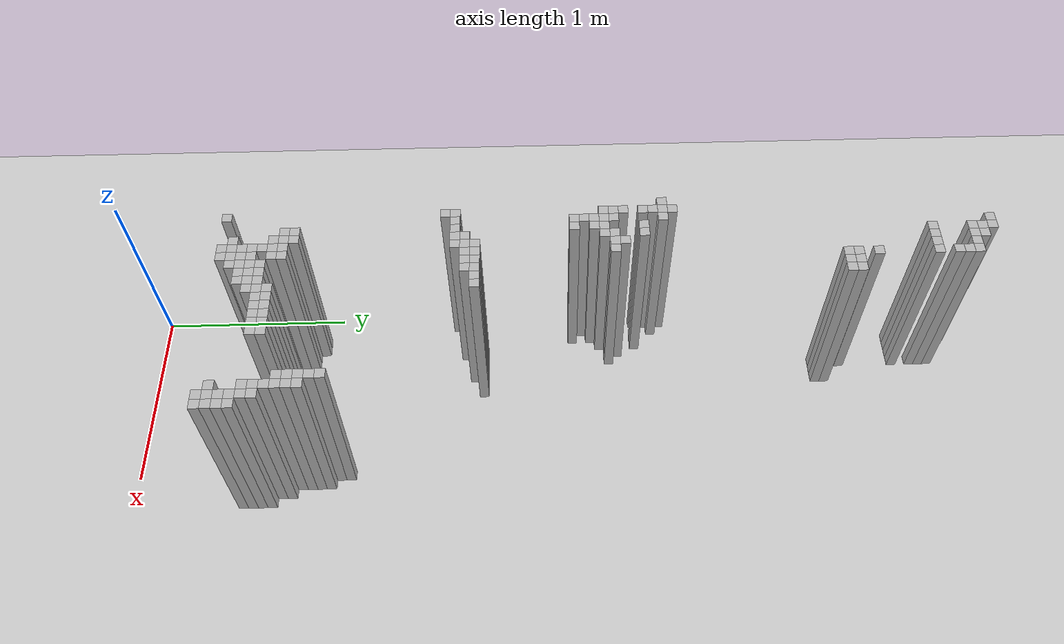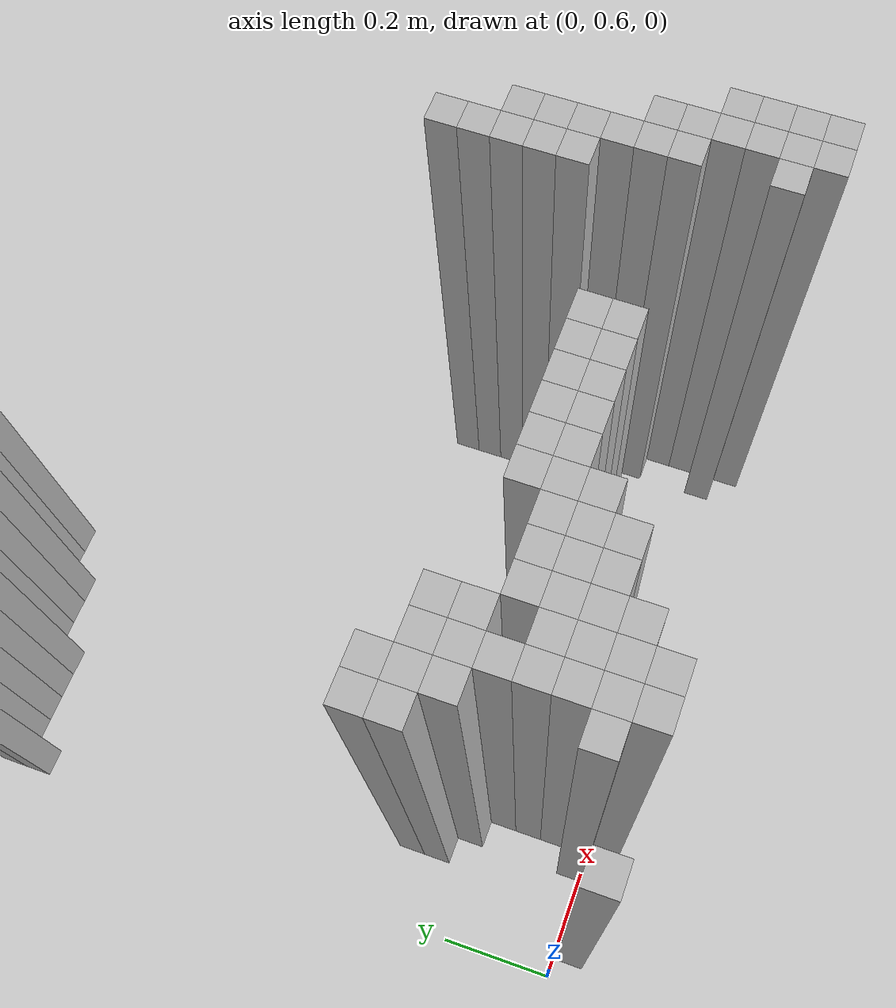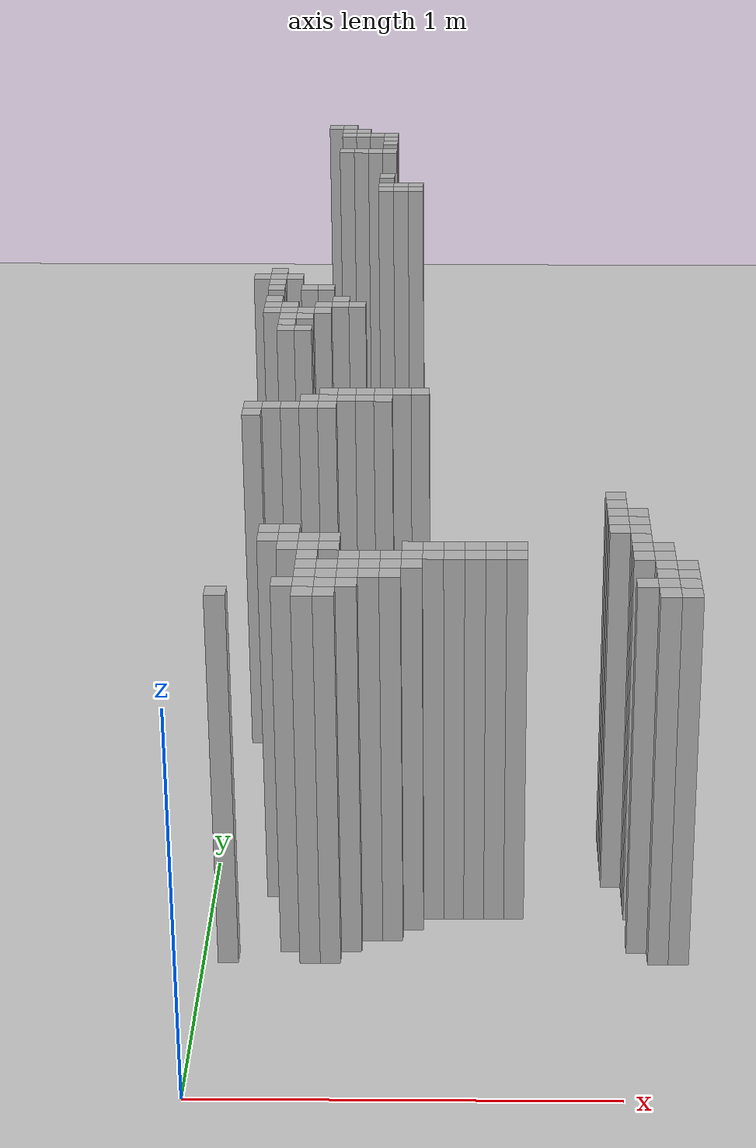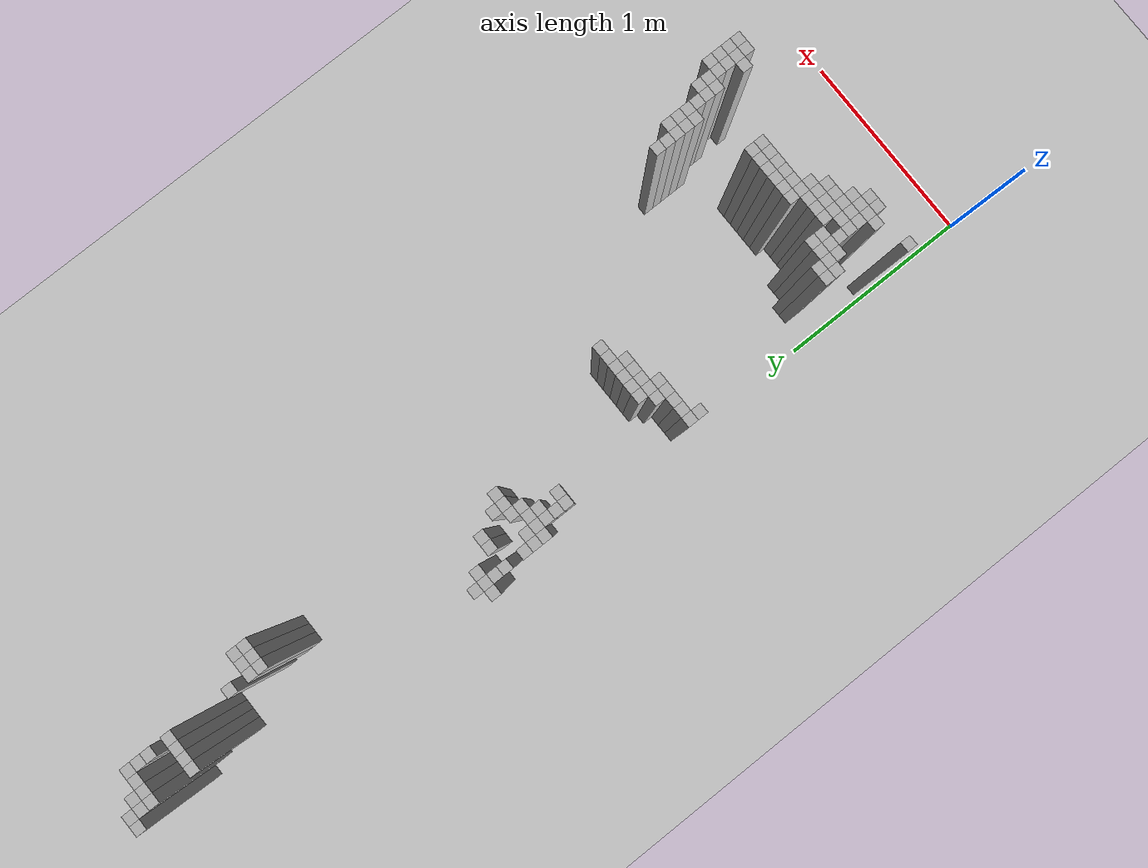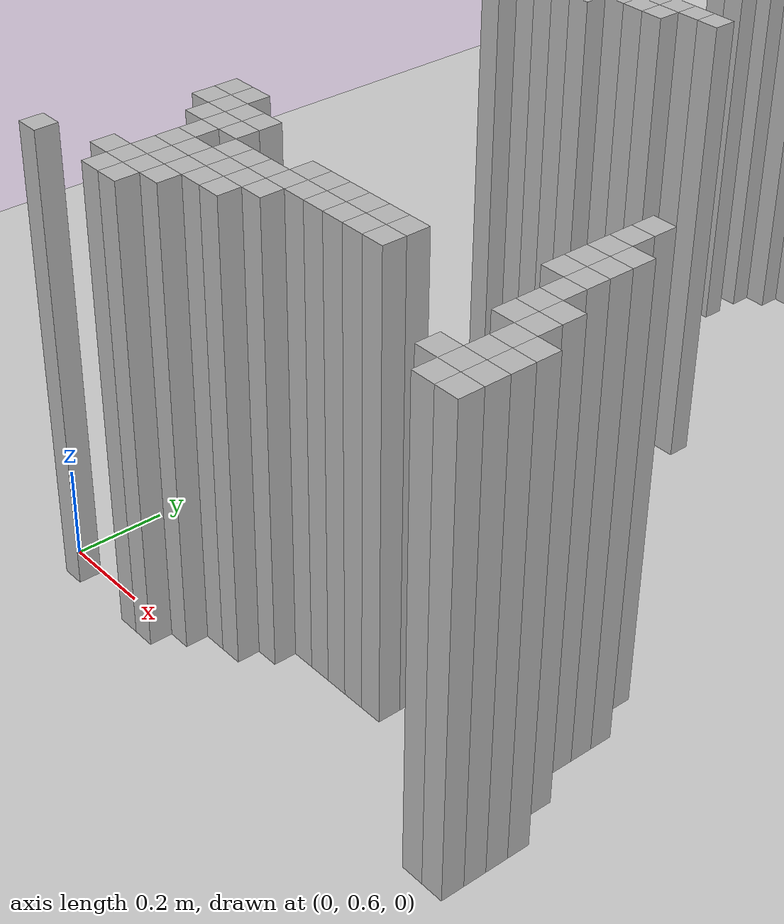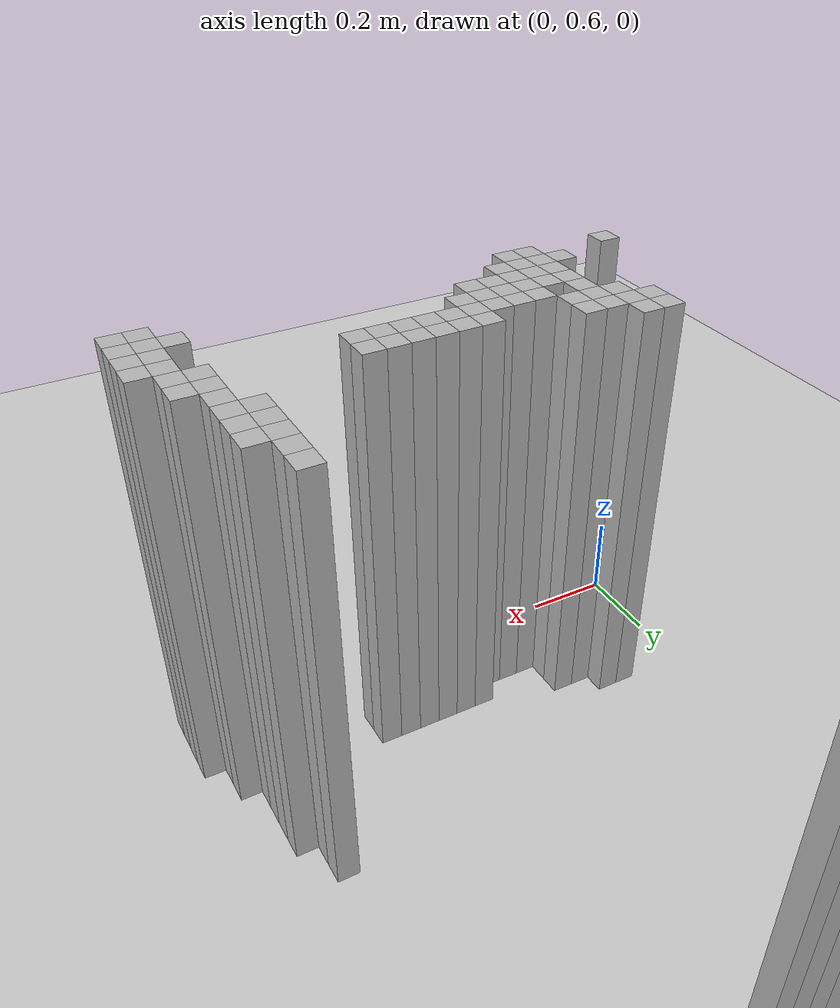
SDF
<sdf version="1.6">
 <world name="default">
  <include><uri>model://ground_plane</uri></include>
  <include><uri>model://sun</uri></include>
  <model name="wall_0">
   <static>true</static>
   <pose>0.16000000000000014 4.42 0.5 0 0 0</pose>
   <link name="link">
    <collision name="collision"><geometry><box><size>0.05 0.05 1</size></box></geometry></collision>
    <visual name="visual"><geometry><box><size>0.05 0.05 1</size></box></geometry></visual>
   </link>
  </model>
  <model name="wall_1">
   <static>true</static>
   <pose>0.2100000000000004 4.42 0.5 0 0 0</pose>
   <link name="link">
    <collision name="collision"><geometry><box><size>0.05 0.05 1</size></box></geometry></collision>
    <visual name="visual"><geometry><box><size>0.05 0.05 1</size></box></geometry></visual>
   </link>
  </model>
  <model name="wall_2">
   <static>true</static>
   <pose>0.2100000000000004 4.370000000000001 0.5 0 0 0</pose>
   <link name="link">
    <collision name="collision"><geometry><box><size>0.05 0.05 1</size></box></geometry></collision>
    <visual name="visual"><geometry><box><size>0.05 0.05 1</size></box></geometry></visual>
   </link>
  </model>
  <model name="wall_3">
   <static>true</static>
   <pose>0.26000000000000023 4.370000000000001 0.5 0 0 0</pose>
   <link name="link">
    <collision name="collision"><geometry><box><size>0.05 0.05 1</size></box></geometry></collision>
    <visual name="visual"><geometry><box><size>0.05 0.05 1</size></box></geometry></visual>
   </link>
  </model>
  <model name="wall_4">
   <static>true</static>
   <pose>0.2100000000000004 4.32 0.5 0 0 0</pose>
   <link name="link">
    <collision name="collision"><geometry><box><size>0.05 0.05 1</size></box></geometry></collision>
    <visual name="visual"><geometry><box><size>0.05 0.05 1</size></box></geometry></visual>
   </link>
  </model>
  <model name="wall_5">
   <static>true</static>
   <pose>0.26000000000000023 4.32 0.5 0 0 0</pose>
   <link name="link">
    <collision name="collision"><geometry><box><size>0.05 0.05 1</size></box></geometry></collision>
    <visual name="visual"><geometry><box><size>0.05 0.05 1</size></box></geometry></visual>
   </link>
  </model>
  <model name="wall_6">
   <static>true</static>
   <pose>0.3100000000000005 4.32 0.5 0 0 0</pose>
   <link name="link">
    <collision name="collision"><geometry><box><size>0.05 0.05 1</size></box></geometry></collision>
    <visual name="visual"><geometry><box><size>0.05 0.05 1</size></box></geometry></visual>
   </link>
  </model>
  <model name="wall_7">
   <static>true</static>
   <pose>0.3600000000000003 4.32 0.5 0 0 0</pose>
   <link name="link">
    <collision name="collision"><geometry><box><size>0.05 0.05 1</size></box></geometry></collision>
    <visual name="visual"><geometry><box><size>0.05 0.05 1</size></box></geometry></visual>
   </link>
  </model>
  <model name="wall_8">
   <static>true</static>
   <pose>0.3600000000000003 4.27 0.5 0 0 0</pose>
   <link name="link">
    <collision name="collision"><geometry><box><size>0.05 0.05 1</size></box></geometry></collision>
    <visual name="visual"><geometry><box><size>0.05 0.05 1</size></box></geometry></visual>
   </link>
  </model>
  <model name="wall_9">
   <static>true</static>
   <pose>0.3600000000000003 4.220000000000001 0.5 0 0 0</pose>
   <link name="link">
    <collision name="collision"><geometry><box><size>0.05 0.05 1</size></box></geometry></collision>
    <visual name="visual"><geometry><box><size>0.05 0.05 1</size></box></geometry></visual>
   </link>
  </model>
  <model name="wall_10">
   <static>true</static>
   <pose>0.2100000000000004 4.120000000000001 0.5 0 0 0</pose>
   <link name="link">
    <collision name="collision"><geometry><box><size>0.05 0.05 1</size></box></geometry></collision>
    <visual name="visual"><geometry><box><size>0.05 0.05 1</size></box></geometry></visual>
   </link>
  </model>
  <model name="wall_11">
   <static>true</static>
   <pose>0.26000000000000023 4.120000000000001 0.5 0 0 0</pose>
   <link name="link">
    <collision name="collision"><geometry><box><size>0.05 0.05 1</size></box></geometry></collision>
    <visual name="visual"><geometry><box><size>0.05 0.05 1</size></box></geometry></visual>
   </link>
  </model>
  <model name="wall_12">
   <static>true</static>
   <pose>0.3100000000000005 4.120000000000001 0.5 0 0 0</pose>
   <link name="link">
    <collision name="collision"><geometry><box><size>0.05 0.05 1</size></box></geometry></collision>
    <visual name="visual"><geometry><box><size>0.05 0.05 1</size></box></geometry></visual>
   </link>
  </model>
  <model name="wall_13">
   <static>true</static>
   <pose>0.3600000000000003 4.120000000000001 0.5 0 0 0</pose>
   <link name="link">
    <collision name="collision"><geometry><box><size>0.05 0.05 1</size></box></geometry></collision>
    <visual name="visual"><geometry><box><size>0.05 0.05 1</size></box></geometry></visual>
   </link>
  </model>
  <model name="wall_14">
   <static>true</static>
   <pose>0.3600000000000003 3.82 0.5 0 0 0</pose>
   <link name="link">
    <collision name="collision"><geometry><box><size>0.05 0.05 1</size></box></geometry></collision>
    <visual name="visual"><geometry><box><size>0.05 0.05 1</size></box></geometry></visual>
   </link>
  </model>
  <model name="wall_15">
   <static>true</static>
   <pose>0.3600000000000003 3.72 0.5 0 0 0</pose>
   <link name="link">
    <collision name="collision"><geometry><box><size>0.05 0.05 1</size></box></geometry></collision>
    <visual name="visual"><geometry><box><size>0.05 0.05 1</size></box></geometry></visual>
   </link>
  </model>
  <model name="wall_16">
   <static>true</static>
   <pose>0.41000000000000014 3.72 0.5 0 0 0</pose>
   <link name="link">
    <collision name="collision"><geometry><box><size>0.05 0.05 1</size></box></geometry></collision>
    <visual name="visual"><geometry><box><size>0.05 0.05 1</size></box></geometry></visual>
   </link>
  </model>
  <model name="wall_17">
   <static>true</static>
   <pose>0.4600000000000004 3.72 0.5 0 0 0</pose>
   <link name="link">
    <collision name="collision"><geometry><box><size>0.05 0.05 1</size></box></geometry></collision>
    <visual name="visual"><geometry><box><size>0.05 0.05 1</size></box></geometry></visual>
   </link>
  </model>
  <model name="wall_18">
   <static>true</static>
   <pose>0.3600000000000003 3.6700000000000004 0.5 0 0 0</pose>
   <link name="link">
    <collision name="collision"><geometry><box><size>0.05 0.05 1</size></box></geometry></collision>
    <visual name="visual"><geometry><box><size>0.05 0.05 1</size></box></geometry></visual>
   </link>
  </model>
  <model name="wall_19">
   <static>true</static>
   <pose>0.41000000000000014 3.6700000000000004 0.5 0 0 0</pose>
   <link name="link">
    <collision name="collision"><geometry><box><size>0.05 0.05 1</size></box></geometry></collision>
    <visual name="visual"><geometry><box><size>0.05 0.05 1</size></box></geometry></visual>
   </link>
  </model>
  <model name="wall_20">
   <static>true</static>
   <pose>0.4600000000000004 3.6700000000000004 0.5 0 0 0</pose>
   <link name="link">
    <collision name="collision"><geometry><box><size>0.05 0.05 1</size></box></geometry></collision>
    <visual name="visual"><geometry><box><size>0.05 0.05 1</size></box></geometry></visual>
   </link>
  </model>
  <model name="wall_23">
   <static>true</static>
   <pose>0.0600000000000005 2.82 0.5 0 0 0</pose>
   <link name="link">
    <collision name="collision"><geometry><box><size>0.05 0.05 1</size></box></geometry></collision>
    <visual name="visual"><geometry><box><size>0.05 0.05 1</size></box></geometry></visual>
   </link>
  </model>
  <model name="wall_27">
   <static>true</static>
   <pose>0.010000000000000231 2.77 0.5 0 0 0</pose>
   <link name="link">
    <collision name="collision"><geometry><box><size>0.05 0.05 1</size></box></geometry></collision>
    <visual name="visual"><geometry><box><size>0.05 0.05 1</size></box></geometry></visual>
   </link>
  </model>
  <model name="wall_28">
   <static>true</static>
   <pose>0.0600000000000005 2.77 0.5 0 0 0</pose>
   <link name="link">
    <collision name="collision"><geometry><box><size>0.05 0.05 1</size></box></geometry></collision>
    <visual name="visual"><geometry><box><size>0.05 0.05 1</size></box></geometry></visual>
   </link>
  </model>
  <model name="wall_29">
   <static>true</static>
   <pose>0.11000000000000032 2.77 0.5 0 0 0</pose>
   <link name="link">
    <collision name="collision"><geometry><box><size>0.05 0.05 1</size></box></geometry></collision>
    <visual name="visual"><geometry><box><size>0.05 0.05 1</size></box></geometry></visual>
   </link>
  </model>
  <model name="wall_33">
   <static>true</static>
   <pose>0.0600000000000005 2.72 0.5 0 0 0</pose>
   <link name="link">
    <collision name="collision"><geometry><box><size>0.05 0.05 1</size></box></geometry></collision>
    <visual name="visual"><geometry><box><size>0.05 0.05 1</size></box></geometry></visual>
   </link>
  </model>
  <model name="wall_36">
   <static>true</static>
   <pose>0.0600000000000005 2.6700000000000004 0.5 0 0 0</pose>
   <link name="link">
    <collision name="collision"><geometry><box><size>0.05 0.05 1</size></box></geometry></collision>
    <visual name="visual"><geometry><box><size>0.05 0.05 1</size></box></geometry></visual>
   </link>
  </model>
  <model name="wall_37">
   <static>true</static>
   <pose>0.16000000000000014 2.6700000000000004 0.5 0 0 0</pose>
   <link name="link">
    <collision name="collision"><geometry><box><size>0.05 0.05 1</size></box></geometry></collision>
    <visual name="visual"><geometry><box><size>0.05 0.05 1</size></box></geometry></visual>
   </link>
  </model>
  <model name="wall_38">
   <static>true</static>
   <pose>0.2100000000000004 2.6700000000000004 0.5 0 0 0</pose>
   <link name="link">
    <collision name="collision"><geometry><box><size>0.05 0.05 1</size></box></geometry></collision>
    <visual name="visual"><geometry><box><size>0.05 0.05 1</size></box></geometry></visual>
   </link>
  </model>
  <model name="wall_42">
   <static>true</static>
   <pose>0.0600000000000005 2.57 0.5 0 0 0</pose>
   <link name="link">
    <collision name="collision"><geometry><box><size>0.05 0.05 1</size></box></geometry></collision>
    <visual name="visual"><geometry><box><size>0.05 0.05 1</size></box></geometry></visual>
   </link>
  </model>
  <model name="wall_43">
   <static>true</static>
   <pose>0.26000000000000023 2.57 0.5 0 0 0</pose>
   <link name="link">
    <collision name="collision"><geometry><box><size>0.05 0.05 1</size></box></geometry></collision>
    <visual name="visual"><geometry><box><size>0.05 0.05 1</size></box></geometry></visual>
   </link>
  </model>
  <model name="wall_44">
   <static>true</static>
   <pose>0.0600000000000005 2.52 0.5 0 0 0</pose>
   <link name="link">
    <collision name="collision"><geometry><box><size>0.05 0.05 1</size></box></geometry></collision>
    <visual name="visual"><geometry><box><size>0.05 0.05 1</size></box></geometry></visual>
   </link>
  </model>
  <model name="wall_45">
   <static>true</static>
   <pose>0.11000000000000032 2.52 0.5 0 0 0</pose>
   <link name="link">
    <collision name="collision"><geometry><box><size>0.05 0.05 1</size></box></geometry></collision>
    <visual name="visual"><geometry><box><size>0.05 0.05 1</size></box></geometry></visual>
   </link>
  </model>
  <model name="wall_46">
   <static>true</static>
   <pose>0.2100000000000004 2.52 0.5 0 0 0</pose>
   <link name="link">
    <collision name="collision"><geometry><box><size>0.05 0.05 1</size></box></geometry></collision>
    <visual name="visual"><geometry><box><size>0.05 0.05 1</size></box></geometry></visual>
   </link>
  </model>
  <model name="wall_47">
   <static>true</static>
   <pose>0.26000000000000023 2.52 0.5 0 0 0</pose>
   <link name="link">
    <collision name="collision"><geometry><box><size>0.05 0.05 1</size></box></geometry></collision>
    <visual name="visual"><geometry><box><size>0.05 0.05 1</size></box></geometry></visual>
   </link>
  </model>
  <model name="wall_48">
   <static>true</static>
   <pose>0.3100000000000005 2.52 0.5 0 0 0</pose>
   <link name="link">
    <collision name="collision"><geometry><box><size>0.05 0.05 1</size></box></geometry></collision>
    <visual name="visual"><geometry><box><size>0.05 0.05 1</size></box></geometry></visual>
   </link>
  </model>
  <model name="wall_50">
   <static>true</static>
   <pose>0.0600000000000005 2.47 0.5 0 0 0</pose>
   <link name="link">
    <collision name="collision"><geometry><box><size>0.05 0.05 1</size></box></geometry></collision>
    <visual name="visual"><geometry><box><size>0.05 0.05 1</size></box></geometry></visual>
   </link>
  </model>
  <model name="wall_51">
   <static>true</static>
   <pose>0.11000000000000032 2.47 0.5 0 0 0</pose>
   <link name="link">
    <collision name="collision"><geometry><box><size>0.05 0.05 1</size></box></geometry></collision>
    <visual name="visual"><geometry><box><size>0.05 0.05 1</size></box></geometry></visual>
   </link>
  </model>
  <model name="wall_52">
   <static>true</static>
   <pose>0.16000000000000014 2.47 0.5 0 0 0</pose>
   <link name="link">
    <collision name="collision"><geometry><box><size>0.05 0.05 1</size></box></geometry></collision>
    <visual name="visual"><geometry><box><size>0.05 0.05 1</size></box></geometry></visual>
   </link>
  </model>
  <model name="wall_53">
   <static>true</static>
   <pose>0.2100000000000004 2.47 0.5 0 0 0</pose>
   <link name="link">
    <collision name="collision"><geometry><box><size>0.05 0.05 1</size></box></geometry></collision>
    <visual name="visual"><geometry><box><size>0.05 0.05 1</size></box></geometry></visual>
   </link>
  </model>
  <model name="wall_54">
   <static>true</static>
   <pose>0.11000000000000032 2.4200000000000004 0.5 0 0 0</pose>
   <link name="link">
    <collision name="collision"><geometry><box><size>0.05 0.05 1</size></box></geometry></collision>
    <visual name="visual"><geometry><box><size>0.05 0.05 1</size></box></geometry></visual>
   </link>
  </model>
  <model name="wall_55">
   <static>true</static>
   <pose>0.16000000000000014 2.4200000000000004 0.5 0 0 0</pose>
   <link name="link">
    <collision name="collision"><geometry><box><size>0.05 0.05 1</size></box></geometry></collision>
    <visual name="visual"><geometry><box><size>0.05 0.05 1</size></box></geometry></visual>
   </link>
  </model>
  <model name="wall_56">
   <static>true</static>
   <pose>0.11000000000000032 2.3699999999999997 0.5 0 0 0</pose>
   <link name="link">
    <collision name="collision"><geometry><box><size>0.05 0.05 1</size></box></geometry></collision>
    <visual name="visual"><geometry><box><size>0.05 0.05 1</size></box></geometry></visual>
   </link>
  </model>
  <model name="wall_57">
   <static>true</static>
   <pose>0.11000000000000032 2.32 0.5 0 0 0</pose>
   <link name="link">
    <collision name="collision"><geometry><box><size>0.05 0.05 1</size></box></geometry></collision>
    <visual name="visual"><geometry><box><size>0.05 0.05 1</size></box></geometry></visual>
   </link>
  </model>
  <model name="wall_58">
   <static>true</static>
   <pose>0.16000000000000014 2.32 0.5 0 0 0</pose>
   <link name="link">
    <collision name="collision"><geometry><box><size>0.05 0.05 1</size></box></geometry></collision>
    <visual name="visual"><geometry><box><size>0.05 0.05 1</size></box></geometry></visual>
   </link>
  </model>
  <model name="wall_65">
   <static>true</static>
   <pose>0.26000000000000023 1.8199999999999998 0.5 0 0 0</pose>
   <link name="link">
    <collision name="collision"><geometry><box><size>0.05 0.05 1</size></box></geometry></collision>
    <visual name="visual"><geometry><box><size>0.05 0.05 1</size></box></geometry></visual>
   </link>
  </model>
  <model name="wall_66">
   <static>true</static>
   <pose>0.3100000000000005 1.8199999999999998 0.5 0 0 0</pose>
   <link name="link">
    <collision name="collision"><geometry><box><size>0.05 0.05 1</size></box></geometry></collision>
    <visual name="visual"><geometry><box><size>0.05 0.05 1</size></box></geometry></visual>
   </link>
  </model>
  <model name="wall_67">
   <static>true</static>
   <pose>0.3600000000000003 1.8199999999999998 0.5 0 0 0</pose>
   <link name="link">
    <collision name="collision"><geometry><box><size>0.05 0.05 1</size></box></geometry></collision>
    <visual name="visual"><geometry><box><size>0.05 0.05 1</size></box></geometry></visual>
   </link>
  </model>
  <model name="wall_68">
   <static>true</static>
   <pose>0.41000000000000014 1.8199999999999998 0.5 0 0 0</pose>
   <link name="link">
    <collision name="collision"><geometry><box><size>0.05 0.05 1</size></box></geometry></collision>
    <visual name="visual"><geometry><box><size>0.05 0.05 1</size></box></geometry></visual>
   </link>
  </model>
  <model name="wall_69">
   <static>true</static>
   <pose>0.4600000000000004 1.8199999999999998 0.5 0 0 0</pose>
   <link name="link">
    <collision name="collision"><geometry><box><size>0.05 0.05 1</size></box></geometry></collision>
    <visual name="visual"><geometry><box><size>0.05 0.05 1</size></box></geometry></visual>
   </link>
  </model>
  <model name="wall_70">
   <static>true</static>
   <pose>0.5100000000000002 1.8199999999999998 0.5 0 0 0</pose>
   <link name="link">
    <collision name="collision"><geometry><box><size>0.05 0.05 1</size></box></geometry></collision>
    <visual name="visual"><geometry><box><size>0.05 0.05 1</size></box></geometry></visual>
   </link>
  </model>
  <model name="wall_72">
   <static>true</static>
   <pose>0.2100000000000004 1.77 0.5 0 0 0</pose>
   <link name="link">
    <collision name="collision"><geometry><box><size>0.05 0.05 1</size></box></geometry></collision>
    <visual name="visual"><geometry><box><size>0.05 0.05 1</size></box></geometry></visual>
   </link>
  </model>
  <model name="wall_73">
   <static>true</static>
   <pose>0.26000000000000023 1.77 0.5 0 0 0</pose>
   <link name="link">
    <collision name="collision"><geometry><box><size>0.05 0.05 1</size></box></geometry></collision>
    <visual name="visual"><geometry><box><size>0.05 0.05 1</size></box></geometry></visual>
   </link>
  </model>
  <model name="wall_74">
   <static>true</static>
   <pose>0.3100000000000005 1.77 0.5 0 0 0</pose>
   <link name="link">
    <collision name="collision"><geometry><box><size>0.05 0.05 1</size></box></geometry></collision>
    <visual name="visual"><geometry><box><size>0.05 0.05 1</size></box></geometry></visual>
   </link>
  </model>
  <model name="wall_75">
   <static>true</static>
   <pose>0.3600000000000003 1.77 0.5 0 0 0</pose>
   <link name="link">
    <collision name="collision"><geometry><box><size>0.05 0.05 1</size></box></geometry></collision>
    <visual name="visual"><geometry><box><size>0.05 0.05 1</size></box></geometry></visual>
   </link>
  </model>
  <model name="wall_76">
   <static>true</static>
   <pose>0.41000000000000014 1.77 0.5 0 0 0</pose>
   <link name="link">
    <collision name="collision"><geometry><box><size>0.05 0.05 1</size></box></geometry></collision>
    <visual name="visual"><geometry><box><size>0.05 0.05 1</size></box></geometry></visual>
   </link>
  </model>
  <model name="wall_77">
   <static>true</static>
   <pose>0.0600000000000005 1.7200000000000002 0.5 0 0 0</pose>
   <link name="link">
    <collision name="collision"><geometry><box><size>0.05 0.05 1</size></box></geometry></collision>
    <visual name="visual"><geometry><box><size>0.05 0.05 1</size></box></geometry></visual>
   </link>
  </model>
  <model name="wall_78">
   <static>true</static>
   <pose>0.11000000000000032 1.7200000000000002 0.5 0 0 0</pose>
   <link name="link">
    <collision name="collision"><geometry><box><size>0.05 0.05 1</size></box></geometry></collision>
    <visual name="visual"><geometry><box><size>0.05 0.05 1</size></box></geometry></visual>
   </link>
  </model>
  <model name="wall_79">
   <static>true</static>
   <pose>0.16000000000000014 1.7200000000000002 0.5 0 0 0</pose>
   <link name="link">
    <collision name="collision"><geometry><box><size>0.05 0.05 1</size></box></geometry></collision>
    <visual name="visual"><geometry><box><size>0.05 0.05 1</size></box></geometry></visual>
   </link>
  </model>
  <model name="wall_80">
   <static>true</static>
   <pose>0.2100000000000004 1.7200000000000002 0.5 0 0 0</pose>
   <link name="link">
    <collision name="collision"><geometry><box><size>0.05 0.05 1</size></box></geometry></collision>
    <visual name="visual"><geometry><box><size>0.05 0.05 1</size></box></geometry></visual>
   </link>
  </model>
  <model name="wall_81">
   <static>true</static>
   <pose>0.26000000000000023 1.7200000000000002 0.5 0 0 0</pose>
   <link name="link">
    <collision name="collision"><geometry><box><size>0.05 0.05 1</size></box></geometry></collision>
    <visual name="visual"><geometry><box><size>0.05 0.05 1</size></box></geometry></visual>
   </link>
  </model>
  <model name="wall_88">
   <static>true</static>
   <pose>0.0600000000000005 1.67 0.5 0 0 0</pose>
   <link name="link">
    <collision name="collision"><geometry><box><size>0.05 0.05 1</size></box></geometry></collision>
    <visual name="visual"><geometry><box><size>0.05 0.05 1</size></box></geometry></visual>
   </link>
  </model>
  <model name="wall_145">
   <static>true</static>
   <pose>1.0100000000000002 1.12 0.5 0 0 0</pose>
   <link name="link">
    <collision name="collision"><geometry><box><size>0.05 0.05 1</size></box></geometry></collision>
    <visual name="visual"><geometry><box><size>0.05 0.05 1</size></box></geometry></visual>
   </link>
  </model>
  <model name="wall_151">
   <static>true</static>
   <pose>1.0100000000000002 1.0699999999999998 0.5 0 0 0</pose>
   <link name="link">
    <collision name="collision"><geometry><box><size>0.05 0.05 1</size></box></geometry></collision>
    <visual name="visual"><geometry><box><size>0.05 0.05 1</size></box></geometry></visual>
   </link>
  </model>
  <model name="wall_156">
   <static>true</static>
   <pose>1.0100000000000002 1.02 0.5 0 0 0</pose>
   <link name="link">
    <collision name="collision"><geometry><box><size>0.05 0.05 1</size></box></geometry></collision>
    <visual name="visual"><geometry><box><size>0.05 0.05 1</size></box></geometry></visual>
   </link>
  </model>
  <model name="wall_157">
   <static>true</static>
   <pose>1.0600000000000005 1.02 0.5 0 0 0</pose>
   <link name="link">
    <collision name="collision"><geometry><box><size>0.05 0.05 1</size></box></geometry></collision>
    <visual name="visual"><geometry><box><size>0.05 0.05 1</size></box></geometry></visual>
   </link>
  </model>
  <model name="wall_160">
   <static>true</static>
   <pose>1.0100000000000002 0.9700000000000002 0.5 0 0 0</pose>
   <link name="link">
    <collision name="collision"><geometry><box><size>0.05 0.05 1</size></box></geometry></collision>
    <visual name="visual"><geometry><box><size>0.05 0.05 1</size></box></geometry></visual>
   </link>
  </model>
  <model name="wall_161">
   <static>true</static>
   <pose>1.0600000000000005 0.9700000000000002 0.5 0 0 0</pose>
   <link name="link">
    <collision name="collision"><geometry><box><size>0.05 0.05 1</size></box></geometry></collision>
    <visual name="visual"><geometry><box><size>0.05 0.05 1</size></box></geometry></visual>
   </link>
  </model>
  <model name="wall_164">
   <static>true</static>
   <pose>0.16000000000000014 0.9199999999999999 0.5 0 0 0</pose>
   <link name="link">
    <collision name="collision"><geometry><box><size>0.05 0.05 1</size></box></geometry></collision>
    <visual name="visual"><geometry><box><size>0.05 0.05 1</size></box></geometry></visual>
   </link>
  </model>
  <model name="wall_165">
   <static>true</static>
   <pose>0.2100000000000004 0.9199999999999999 0.5 0 0 0</pose>
   <link name="link">
    <collision name="collision"><geometry><box><size>0.05 0.05 1</size></box></geometry></collision>
    <visual name="visual"><geometry><box><size>0.05 0.05 1</size></box></geometry></visual>
   </link>
  </model>
  <model name="wall_166">
   <static>true</static>
   <pose>1.0100000000000002 0.9199999999999999 0.5 0 0 0</pose>
   <link name="link">
    <collision name="collision"><geometry><box><size>0.05 0.05 1</size></box></geometry></collision>
    <visual name="visual"><geometry><box><size>0.05 0.05 1</size></box></geometry></visual>
   </link>
  </model>
  <model name="wall_167">
   <static>true</static>
   <pose>1.0600000000000005 0.9199999999999999 0.5 0 0 0</pose>
   <link name="link">
    <collision name="collision"><geometry><box><size>0.05 0.05 1</size></box></geometry></collision>
    <visual name="visual"><geometry><box><size>0.05 0.05 1</size></box></geometry></visual>
   </link>
  </model>
  <model name="wall_170">
   <static>true</static>
   <pose>0.16000000000000014 0.8700000000000001 0.5 0 0 0</pose>
   <link name="link">
    <collision name="collision"><geometry><box><size>0.05 0.05 1</size></box></geometry></collision>
    <visual name="visual"><geometry><box><size>0.05 0.05 1</size></box></geometry></visual>
   </link>
  </model>
  <model name="wall_171">
   <static>true</static>
   <pose>0.2100000000000004 0.8700000000000001 0.5 0 0 0</pose>
   <link name="link">
    <collision name="collision"><geometry><box><size>0.05 0.05 1</size></box></geometry></collision>
    <visual name="visual"><geometry><box><size>0.05 0.05 1</size></box></geometry></visual>
   </link>
  </model>
  <model name="wall_172">
   <static>true</static>
   <pose>0.26000000000000023 0.8700000000000001 0.5 0 0 0</pose>
   <link name="link">
    <collision name="collision"><geometry><box><size>0.05 0.05 1</size></box></geometry></collision>
    <visual name="visual"><geometry><box><size>0.05 0.05 1</size></box></geometry></visual>
   </link>
  </model>
  <model name="wall_173">
   <static>true</static>
   <pose>0.3100000000000005 0.8700000000000001 0.5 0 0 0</pose>
   <link name="link">
    <collision name="collision"><geometry><box><size>0.05 0.05 1</size></box></geometry></collision>
    <visual name="visual"><geometry><box><size>0.05 0.05 1</size></box></geometry></visual>
   </link>
  </model>
  <model name="wall_174">
   <static>true</static>
   <pose>1.0600000000000005 0.8700000000000001 0.5 0 0 0</pose>
   <link name="link">
    <collision name="collision"><geometry><box><size>0.05 0.05 1</size></box></geometry></collision>
    <visual name="visual"><geometry><box><size>0.05 0.05 1</size></box></geometry></visual>
   </link>
  </model>
  <model name="wall_178">
   <static>true</static>
   <pose>0.2100000000000004 0.8199999999999998 0.5 0 0 0</pose>
   <link name="link">
    <collision name="collision"><geometry><box><size>0.05 0.05 1</size></box></geometry></collision>
    <visual name="visual"><geometry><box><size>0.05 0.05 1</size></box></geometry></visual>
   </link>
  </model>
  <model name="wall_179">
   <static>true</static>
   <pose>0.26000000000000023 0.8199999999999998 0.5 0 0 0</pose>
   <link name="link">
    <collision name="collision"><geometry><box><size>0.05 0.05 1</size></box></geometry></collision>
    <visual name="visual"><geometry><box><size>0.05 0.05 1</size></box></geometry></visual>
   </link>
  </model>
  <model name="wall_180">
   <static>true</static>
   <pose>0.3100000000000005 0.8199999999999998 0.5 0 0 0</pose>
   <link name="link">
    <collision name="collision"><geometry><box><size>0.05 0.05 1</size></box></geometry></collision>
    <visual name="visual"><geometry><box><size>0.05 0.05 1</size></box></geometry></visual>
   </link>
  </model>
  <model name="wall_181">
   <static>true</static>
   <pose>0.5100000000000002 0.8199999999999998 0.5 0 0 0</pose>
   <link name="link">
    <collision name="collision"><geometry><box><size>0.05 0.05 1</size></box></geometry></collision>
    <visual name="visual"><geometry><box><size>0.05 0.05 1</size></box></geometry></visual>
   </link>
  </model>
  <model name="wall_182">
   <static>true</static>
   <pose>0.5600000000000005 0.8199999999999998 0.5 0 0 0</pose>
   <link name="link">
    <collision name="collision"><geometry><box><size>0.05 0.05 1</size></box></geometry></collision>
    <visual name="visual"><geometry><box><size>0.05 0.05 1</size></box></geometry></visual>
   </link>
  </model>
  <model name="wall_183">
   <static>true</static>
   <pose>0.6100000000000003 0.8199999999999998 0.5 0 0 0</pose>
   <link name="link">
    <collision name="collision"><geometry><box><size>0.05 0.05 1</size></box></geometry></collision>
    <visual name="visual"><geometry><box><size>0.05 0.05 1</size></box></geometry></visual>
   </link>
  </model>
  <model name="wall_184">
   <static>true</static>
   <pose>0.6600000000000001 0.8199999999999998 0.5 0 0 0</pose>
   <link name="link">
    <collision name="collision"><geometry><box><size>0.05 0.05 1</size></box></geometry></collision>
    <visual name="visual"><geometry><box><size>0.05 0.05 1</size></box></geometry></visual>
   </link>
  </model>
  <model name="wall_185">
   <static>true</static>
   <pose>0.7100000000000004 0.8199999999999998 0.5 0 0 0</pose>
   <link name="link">
    <collision name="collision"><geometry><box><size>0.05 0.05 1</size></box></geometry></collision>
    <visual name="visual"><geometry><box><size>0.05 0.05 1</size></box></geometry></visual>
   </link>
  </model>
  <model name="wall_186">
   <static>true</static>
   <pose>0.7600000000000002 0.8199999999999998 0.5 0 0 0</pose>
   <link name="link">
    <collision name="collision"><geometry><box><size>0.05 0.05 1</size></box></geometry></collision>
    <visual name="visual"><geometry><box><size>0.05 0.05 1</size></box></geometry></visual>
   </link>
  </model>
  <model name="wall_187">
   <static>true</static>
   <pose>1.0600000000000005 0.8199999999999998 0.5 0 0 0</pose>
   <link name="link">
    <collision name="collision"><geometry><box><size>0.05 0.05 1</size></box></geometry></collision>
    <visual name="visual"><geometry><box><size>0.05 0.05 1</size></box></geometry></visual>
   </link>
  </model>
  <model name="wall_188">
   <static>true</static>
   <pose>1.1100000000000003 0.8199999999999998 0.5 0 0 0</pose>
   <link name="link">
    <collision name="collision"><geometry><box><size>0.05 0.05 1</size></box></geometry></collision>
    <visual name="visual"><geometry><box><size>0.05 0.05 1</size></box></geometry></visual>
   </link>
  </model>
  <model name="wall_192">
   <static>true</static>
   <pose>0.26000000000000023 0.77 0.5 0 0 0</pose>
   <link name="link">
    <collision name="collision"><geometry><box><size>0.05 0.05 1</size></box></geometry></collision>
    <visual name="visual"><geometry><box><size>0.05 0.05 1</size></box></geometry></visual>
   </link>
  </model>
  <model name="wall_193">
   <static>true</static>
   <pose>0.3600000000000003 0.77 0.5 0 0 0</pose>
   <link name="link">
    <collision name="collision"><geometry><box><size>0.05 0.05 1</size></box></geometry></collision>
    <visual name="visual"><geometry><box><size>0.05 0.05 1</size></box></geometry></visual>
   </link>
  </model>
  <model name="wall_194">
   <static>true</static>
   <pose>0.41000000000000014 0.77 0.5 0 0 0</pose>
   <link name="link">
    <collision name="collision"><geometry><box><size>0.05 0.05 1</size></box></geometry></collision>
    <visual name="visual"><geometry><box><size>0.05 0.05 1</size></box></geometry></visual>
   </link>
  </model>
  <model name="wall_195">
   <static>true</static>
   <pose>0.4600000000000004 0.77 0.5 0 0 0</pose>
   <link name="link">
    <collision name="collision"><geometry><box><size>0.05 0.05 1</size></box></geometry></collision>
    <visual name="visual"><geometry><box><size>0.05 0.05 1</size></box></geometry></visual>
   </link>
  </model>
  <model name="wall_196">
   <static>true</static>
   <pose>0.5100000000000002 0.77 0.5 0 0 0</pose>
   <link name="link">
    <collision name="collision"><geometry><box><size>0.05 0.05 1</size></box></geometry></collision>
    <visual name="visual"><geometry><box><size>0.05 0.05 1</size></box></geometry></visual>
   </link>
  </model>
  <model name="wall_197">
   <static>true</static>
   <pose>0.5600000000000005 0.77 0.5 0 0 0</pose>
   <link name="link">
    <collision name="collision"><geometry><box><size>0.05 0.05 1</size></box></geometry></collision>
    <visual name="visual"><geometry><box><size>0.05 0.05 1</size></box></geometry></visual>
   </link>
  </model>
  <model name="wall_198">
   <static>true</static>
   <pose>0.6100000000000003 0.77 0.5 0 0 0</pose>
   <link name="link">
    <collision name="collision"><geometry><box><size>0.05 0.05 1</size></box></geometry></collision>
    <visual name="visual"><geometry><box><size>0.05 0.05 1</size></box></geometry></visual>
   </link>
  </model>
  <model name="wall_199">
   <static>true</static>
   <pose>0.6600000000000001 0.77 0.5 0 0 0</pose>
   <link name="link">
    <collision name="collision"><geometry><box><size>0.05 0.05 1</size></box></geometry></collision>
    <visual name="visual"><geometry><box><size>0.05 0.05 1</size></box></geometry></visual>
   </link>
  </model>
  <model name="wall_200">
   <static>true</static>
   <pose>0.7100000000000004 0.77 0.5 0 0 0</pose>
   <link name="link">
    <collision name="collision"><geometry><box><size>0.05 0.05 1</size></box></geometry></collision>
    <visual name="visual"><geometry><box><size>0.05 0.05 1</size></box></geometry></visual>
   </link>
  </model>
  <model name="wall_201">
   <static>true</static>
   <pose>0.7600000000000002 0.77 0.5 0 0 0</pose>
   <link name="link">
    <collision name="collision"><geometry><box><size>0.05 0.05 1</size></box></geometry></collision>
    <visual name="visual"><geometry><box><size>0.05 0.05 1</size></box></geometry></visual>
   </link>
  </model>
  <model name="wall_202">
   <static>true</static>
   <pose>1.0600000000000005 0.77 0.5 0 0 0</pose>
   <link name="link">
    <collision name="collision"><geometry><box><size>0.05 0.05 1</size></box></geometry></collision>
    <visual name="visual"><geometry><box><size>0.05 0.05 1</size></box></geometry></visual>
   </link>
  </model>
  <model name="wall_203">
   <static>true</static>
   <pose>1.1100000000000003 0.77 0.5 0 0 0</pose>
   <link name="link">
    <collision name="collision"><geometry><box><size>0.05 0.05 1</size></box></geometry></collision>
    <visual name="visual"><geometry><box><size>0.05 0.05 1</size></box></geometry></visual>
   </link>
  </model>
  <model name="wall_207">
   <static>true</static>
   <pose>0.26000000000000023 0.7200000000000002 0.5 0 0 0</pose>
   <link name="link">
    <collision name="collision"><geometry><box><size>0.05 0.05 1</size></box></geometry></collision>
    <visual name="visual"><geometry><box><size>0.05 0.05 1</size></box></geometry></visual>
   </link>
  </model>
  <model name="wall_208">
   <static>true</static>
   <pose>0.3100000000000005 0.7200000000000002 0.5 0 0 0</pose>
   <link name="link">
    <collision name="collision"><geometry><box><size>0.05 0.05 1</size></box></geometry></collision>
    <visual name="visual"><geometry><box><size>0.05 0.05 1</size></box></geometry></visual>
   </link>
  </model>
  <model name="wall_209">
   <static>true</static>
   <pose>0.3600000000000003 0.7200000000000002 0.5 0 0 0</pose>
   <link name="link">
    <collision name="collision"><geometry><box><size>0.05 0.05 1</size></box></geometry></collision>
    <visual name="visual"><geometry><box><size>0.05 0.05 1</size></box></geometry></visual>
   </link>
  </model>
  <model name="wall_210">
   <static>true</static>
   <pose>0.41000000000000014 0.7200000000000002 0.5 0 0 0</pose>
   <link name="link">
    <collision name="collision"><geometry><box><size>0.05 0.05 1</size></box></geometry></collision>
    <visual name="visual"><geometry><box><size>0.05 0.05 1</size></box></geometry></visual>
   </link>
  </model>
  <model name="wall_211">
   <static>true</static>
   <pose>0.4600000000000004 0.7200000000000002 0.5 0 0 0</pose>
   <link name="link">
    <collision name="collision"><geometry><box><size>0.05 0.05 1</size></box></geometry></collision>
    <visual name="visual"><geometry><box><size>0.05 0.05 1</size></box></geometry></visual>
   </link>
  </model>
  <model name="wall_212">
   <static>true</static>
   <pose>0.5100000000000002 0.7200000000000002 0.5 0 0 0</pose>
   <link name="link">
    <collision name="collision"><geometry><box><size>0.05 0.05 1</size></box></geometry></collision>
    <visual name="visual"><geometry><box><size>0.05 0.05 1</size></box></geometry></visual>
   </link>
  </model>
  <model name="wall_213">
   <static>true</static>
   <pose>1.1100000000000003 0.7200000000000002 0.5 0 0 0</pose>
   <link name="link">
    <collision name="collision"><geometry><box><size>0.05 0.05 1</size></box></geometry></collision>
    <visual name="visual"><geometry><box><size>0.05 0.05 1</size></box></geometry></visual>
   </link>
  </model>
  <model name="wall_214">
   <static>true</static>
   <pose>1.1600000000000001 0.7200000000000002 0.5 0 0 0</pose>
   <link name="link">
    <collision name="collision"><geometry><box><size>0.05 0.05 1</size></box></geometry></collision>
    <visual name="visual"><geometry><box><size>0.05 0.05 1</size></box></geometry></visual>
   </link>
  </model>
  <model name="wall_223">
   <static>true</static>
   <pose>0.26000000000000023 0.6699999999999999 0.5 0 0 0</pose>
   <link name="link">
    <collision name="collision"><geometry><box><size>0.05 0.05 1</size></box></geometry></collision>
    <visual name="visual"><geometry><box><size>0.05 0.05 1</size></box></geometry></visual>
   </link>
  </model>
  <model name="wall_224">
   <static>true</static>
   <pose>0.3100000000000005 0.6699999999999999 0.5 0 0 0</pose>
   <link name="link">
    <collision name="collision"><geometry><box><size>0.05 0.05 1</size></box></geometry></collision>
    <visual name="visual"><geometry><box><size>0.05 0.05 1</size></box></geometry></visual>
   </link>
  </model>
  <model name="wall_225">
   <static>true</static>
   <pose>0.3600000000000003 0.6699999999999999 0.5 0 0 0</pose>
   <link name="link">
    <collision name="collision"><geometry><box><size>0.05 0.05 1</size></box></geometry></collision>
    <visual name="visual"><geometry><box><size>0.05 0.05 1</size></box></geometry></visual>
   </link>
  </model>
  <model name="wall_226">
   <static>true</static>
   <pose>0.41000000000000014 0.6699999999999999 0.5 0 0 0</pose>
   <link name="link">
    <collision name="collision"><geometry><box><size>0.05 0.05 1</size></box></geometry></collision>
    <visual name="visual"><geometry><box><size>0.05 0.05 1</size></box></geometry></visual>
   </link>
  </model>
  <model name="wall_227">
   <static>true</static>
   <pose>0.4600000000000004 0.6699999999999999 0.5 0 0 0</pose>
   <link name="link">
    <collision name="collision"><geometry><box><size>0.05 0.05 1</size></box></geometry></collision>
    <visual name="visual"><geometry><box><size>0.05 0.05 1</size></box></geometry></visual>
   </link>
  </model>
  <model name="wall_228">
   <static>true</static>
   <pose>1.1100000000000003 0.6699999999999999 0.5 0 0 0</pose>
   <link name="link">
    <collision name="collision"><geometry><box><size>0.05 0.05 1</size></box></geometry></collision>
    <visual name="visual"><geometry><box><size>0.05 0.05 1</size></box></geometry></visual>
   </link>
  </model>
  <model name="wall_229">
   <static>true</static>
   <pose>1.1600000000000001 0.6699999999999999 0.5 0 0 0</pose>
   <link name="link">
    <collision name="collision"><geometry><box><size>0.05 0.05 1</size></box></geometry></collision>
    <visual name="visual"><geometry><box><size>0.05 0.05 1</size></box></geometry></visual>
   </link>
  </model>
  <model name="wall_240">
   <static>true</static>
   <pose>0.2100000000000004 0.6200000000000001 0.5 0 0 0</pose>
   <link name="link">
    <collision name="collision"><geometry><box><size>0.05 0.05 1</size></box></geometry></collision>
    <visual name="visual"><geometry><box><size>0.05 0.05 1</size></box></geometry></visual>
   </link>
  </model>
  <model name="wall_241">
   <static>true</static>
   <pose>0.26000000000000023 0.6200000000000001 0.5 0 0 0</pose>
   <link name="link">
    <collision name="collision"><geometry><box><size>0.05 0.05 1</size></box></geometry></collision>
    <visual name="visual"><geometry><box><size>0.05 0.05 1</size></box></geometry></visual>
   </link>
  </model>
  <model name="wall_242">
   <static>true</static>
   <pose>0.3100000000000005 0.6200000000000001 0.5 0 0 0</pose>
   <link name="link">
    <collision name="collision"><geometry><box><size>0.05 0.05 1</size></box></geometry></collision>
    <visual name="visual"><geometry><box><size>0.05 0.05 1</size></box></geometry></visual>
   </link>
  </model>
  <model name="wall_243">
   <static>true</static>
   <pose>0.3600000000000003 0.6200000000000001 0.5 0 0 0</pose>
   <link name="link">
    <collision name="collision"><geometry><box><size>0.05 0.05 1</size></box></geometry></collision>
    <visual name="visual"><geometry><box><size>0.05 0.05 1</size></box></geometry></visual>
   </link>
  </model>
  <model name="wall_244">
   <static>true</static>
   <pose>1.0600000000000005 0.6200000000000001 0.5 0 0 0</pose>
   <link name="link">
    <collision name="collision"><geometry><box><size>0.05 0.05 1</size></box></geometry></collision>
    <visual name="visual"><geometry><box><size>0.05 0.05 1</size></box></geometry></visual>
   </link>
  </model>
  <model name="wall_245">
   <static>true</static>
   <pose>1.1100000000000003 0.6200000000000001 0.5 0 0 0</pose>
   <link name="link">
    <collision name="collision"><geometry><box><size>0.05 0.05 1</size></box></geometry></collision>
    <visual name="visual"><geometry><box><size>0.05 0.05 1</size></box></geometry></visual>
   </link>
  </model>
  <model name="wall_246">
   <static>true</static>
   <pose>1.1600000000000001 0.6200000000000001 0.5 0 0 0</pose>
   <link name="link">
    <collision name="collision"><geometry><box><size>0.05 0.05 1</size></box></geometry></collision>
    <visual name="visual"><geometry><box><size>0.05 0.05 1</size></box></geometry></visual>
   </link>
  </model>
  <model name="wall_255">
   <static>true</static>
   <pose>0.0600000000000005 0.5699999999999998 0.5 0 0 0</pose>
   <link name="link">
    <collision name="collision"><geometry><box><size>0.05 0.05 1</size></box></geometry></collision>
    <visual name="visual"><geometry><box><size>0.05 0.05 1</size></box></geometry></visual>
   </link>
  </model>
  <model name="wall_256">
   <static>true</static>
   <pose>0.26000000000000023 0.5699999999999998 0.5 0 0 0</pose>
   <link name="link">
    <collision name="collision"><geometry><box><size>0.05 0.05 1</size></box></geometry></collision>
    <visual name="visual"><geometry><box><size>0.05 0.05 1</size></box></geometry></visual>
   </link>
  </model>
  <model name="wall_257">
   <static>true</static>
   <pose>0.3100000000000005 0.5699999999999998 0.5 0 0 0</pose>
   <link name="link">
    <collision name="collision"><geometry><box><size>0.05 0.05 1</size></box></geometry></collision>
    <visual name="visual"><geometry><box><size>0.05 0.05 1</size></box></geometry></visual>
   </link>
  </model>
  <model name="wall_258">
   <static>true</static>
   <pose>1.1100000000000003 0.5699999999999998 0.5 0 0 0</pose>
   <link name="link">
    <collision name="collision"><geometry><box><size>0.05 0.05 1</size></box></geometry></collision>
    <visual name="visual"><geometry><box><size>0.05 0.05 1</size></box></geometry></visual>
   </link>
  </model>
  <model name="wall_259">
   <static>true</static>
   <pose>1.1600000000000001 0.5699999999999998 0.5 0 0 0</pose>
   <link name="link">
    <collision name="collision"><geometry><box><size>0.05 0.05 1</size></box></geometry></collision>
    <visual name="visual"><geometry><box><size>0.05 0.05 1</size></box></geometry></visual>
   </link>
  </model>
 </world>
</sdf>
